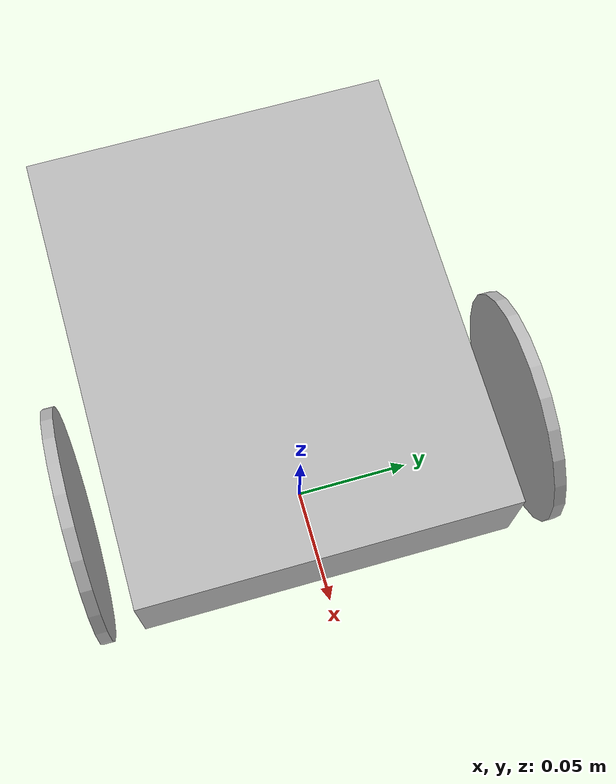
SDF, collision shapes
<?xml version="1.0"?>
<sdf version="1.6">
  <model name="puzzlebot_cam">

    <!-- ── Links ─────────────────────────────────────────────────── -->

    <link name="base_footprint">
      <pose>0 0 0 0 0 0</pose>
      <inertial>
        <mass>0.001</mass>
        <inertia><ixx>0.001</ixx><iyy>0.001</iyy><izz>0.001</izz>
                 <ixy>0</ixy><ixz>0</ixz><iyz>0</iyz></inertia>
      </inertial>
    </link>

    <!-- chassis — center at z=0.05 (wheel radius) -->
    <link name="base_link">
      <pose>0 0 0.05 0 0 0</pose>
      <inertial>
        <mass>0.8</mass>
        <pose>-0.05 0 0 0 0 0</pose>
        <inertia><ixx>0.07</ixx><iyy>0.08</iyy><izz>0.10</izz>
                 <ixy>0</ixy><ixz>0</ixz><iyz>0</iyz></inertia>
      </inertial>
      <visual name="visual">
        <geometry>
          <mesh><uri>model://puzzlebot_cam/meshes/chassis1.dae</uri></mesh>
        </geometry>
      </visual>
      <collision name="collision">
        <pose>-0.055 0 0 0 0 0</pose>
        <geometry>
          <box><size>0.20 0.16 0.046</size></box>
        </geometry>
      </collision>
    </link>

    <!-- left wheel — at (0, +0.095, 0.05) in model frame -->
    <link name="wheel_left_link">
      <pose>0 0.095 0.05 0 0 0</pose>
      <inertial>
        <mass>0.05</mass>
        <inertia><ixx>0.000051</ixx><iyy>0.000051</iyy><izz>0.000090</izz>
                 <ixy>0</ixy><ixz>0</ixz><iyz>0</iyz></inertia>
      </inertial>
      <visual name="visual">
        <geometry>
          <mesh><uri>model://puzzlebot_cam/meshes/wheel.dae</uri></mesh>
        </geometry>
      </visual>
      <collision name="collision">
        <pose>0 0 0 1.5708 0 0</pose>
        <geometry>
          <cylinder><radius>0.05</radius><length>0.005</length></cylinder>
        </geometry>
        <surface><friction><ode><mu>1.0</mu><mu2>0.2</mu2></ode></friction></surface>
      </collision>
    </link>

    <!-- right wheel — mirrored (z-rotation 180°) -->
    <link name="wheel_right_link">
      <pose>0 -0.095 0.05 0 0 3.14159</pose>
      <inertial>
        <mass>0.05</mass>
        <inertia><ixx>0.000051</ixx><iyy>0.000051</iyy><izz>0.000090</izz>
                 <ixy>0</ixy><ixz>0</ixz><iyz>0</iyz></inertia>
      </inertial>
      <visual name="visual">
        <geometry>
          <mesh><uri>model://puzzlebot_cam/meshes/wheel.dae</uri></mesh>
        </geometry>
      </visual>
      <collision name="collision">
        <pose>0 0 0 1.5708 0 0</pose>
        <geometry>
          <cylinder><radius>0.05</radius><length>0.005</length></cylinder>
        </geometry>
        <surface><friction><ode><mu>1.0</mu><mu2>0.2</mu2></ode></friction></surface>
      </collision>
    </link>

    <!-- caster ball -->
    <link name="caster_back_link">
      <pose>-0.145 0 0.006 0 0 0</pose>
      <inertial>
        <mass>0.01</mass>
        <inertia><ixx>0.000051</ixx><iyy>0.000051</iyy><izz>0.000090</izz>
                 <ixy>0</ixy><ixz>0</ixz><iyz>0</iyz></inertia>
      </inertial>
      <visual name="visual">
        <geometry><sphere><radius>0.006</radius></sphere></geometry>
        <material>
          <ambient>0.0 1 0.0 1</ambient>
          <diffuse>0.0 1 0.0 1</diffuse>
        </material>
      </visual>
      <collision name="collision">
        <geometry><sphere><radius>0.006</radius></sphere></geometry>
      </collision>
    </link>

    <!-- IMU (dummy — keeps TF tree intact with TurtleBot3 URDF) -->
    <link name="imu_link">
      <pose>0 0 0.068 0 0 0</pose>
      <inertial>
        <mass>0.001</mass>
        <inertia><ixx>0.001</ixx><iyy>0.001</iyy><izz>0.001</izz>
                 <ixy>0</ixy><ixz>0</ixz><iyz>0</iyz></inertia>
      </inertial>
    </link>

    <!-- LiDAR — 360°, 5 Hz, RPLidar A1 spec -->
    <link name="base_scan">
      <pose>0 0 0.11 0 0 0</pose>
      <inertial>
        <mass>0.01</mass>
        <inertia><ixx>0.001</ixx><iyy>0.001</iyy><izz>0.001</izz>
                 <ixy>0</ixy><ixz>0</ixz><iyz>0</iyz></inertia>
      </inertial>
      <sensor type="ray" name="base_scan_sensor">
        <visualize>false</visualize>
        <update_rate>5</update_rate>
        <ray>
          <scan>
            <horizontal>
              <samples>360</samples>
              <resolution>1</resolution>
              <min_angle>-3.14159</min_angle>
              <max_angle>3.14159</max_angle>
            </horizontal>
          </scan>
          <range>
            <min>0.120</min>
            <max>3.5</max>
            <resolution>0.015</resolution>
          </range>
          <noise>
            <type>gaussian</type>
            <mean>0.0</mean>
            <stddev>0.01</stddev>
          </noise>
        </ray>
        <plugin name="gazebo_ros_lidar" filename="libgazebo_ros_ray_sensor.so">
          <ros>
            <remapping>~/out:=scan</remapping>
          </ros>
          <output_type>sensor_msgs/LaserScan</output_type>
          <frame_name>base_scan</frame_name>
        </plugin>
      </sensor>
    </link>

    <!-- camera — FOV 1.047 rad (60°), 320×240, 30 Hz -->
    <link name="camera_link">
      <pose>0.05 0 0.11 0 0 0</pose>
      <inertial>
        <mass>0.01</mass>
        <inertia><ixx>0.001</ixx><iyy>0.001</iyy><izz>0.001</izz>
                 <ixy>0</ixy><ixz>0</ixz><iyz>0</iyz></inertia>
      </inertial>
      <sensor type="camera" name="camera_sensor">
        <camera name="head">
          <horizontal_fov>1.047</horizontal_fov>
          <image>
            <width>320</width>
            <height>240</height>
            <format>R8G8B8</format>
          </image>
          <clip><near>0.02</near><far>300</far></clip>
          <noise>
            <type>gaussian</type>
            <mean>0.0</mean>
            <stddev>0.007</stddev>
          </noise>
        </camera>
        <always_on>true</always_on>
        <update_rate>30</update_rate>
        <visualize>true</visualize>
        <plugin name="camera_driver" filename="libgazebo_ros_camera.so">
          <ros>
            <remapping>image_raw:=image_raw</remapping>
            <remapping>camera_info:=camera_info</remapping>
          </ros>
          <camera_name>camera</camera_name>
          <frame_name>camera_rgb_optical_frame</frame_name>
          <hack_baseline>0.07</hack_baseline>
        </plugin>
      </sensor>
    </link>

    <!-- camera optical frames (needed by aruco_detector) -->
    <link name="camera_rgb_frame">
      <pose>0.05 0 0.11 0 0 0</pose>
      <inertial>
        <mass>0.001</mass>
        <inertia><ixx>0.001</ixx><iyy>0.001</iyy><izz>0.001</izz>
                 <ixy>0</ixy><ixz>0</ixz><iyz>0</iyz></inertia>
      </inertial>
    </link>

    <link name="camera_rgb_optical_frame">
      <pose>0.05 0 0.11 -1.5708 0 -1.5708</pose>
      <inertial>
        <mass>0.001</mass>
        <inertia><ixx>0.001</ixx><iyy>0.001</iyy><izz>0.001</izz>
                 <ixy>0</ixy><ixz>0</ixz><iyz>0</iyz></inertia>
      </inertial>
    </link>

    <!-- ── Joints ────────────────────────────────────────────────── -->

    <joint name="base_joint" type="fixed">
      <parent>base_footprint</parent>
      <child>base_link</child>
    </joint>

    <joint name="wheel_left_joint" type="revolute">
      <parent>base_link</parent>
      <child>wheel_left_link</child>
      <axis>
        <xyz>0 1 0</xyz>
        <limit>
          <lower>-1.79769e+308</lower>
          <upper>1.79769e+308</upper>
          <effort>1</effort>
        </limit>
        <dynamics><friction>0.1</friction></dynamics>
      </axis>
    </joint>

    <joint name="wheel_right_joint" type="revolute">
      <parent>base_link</parent>
      <child>wheel_right_link</child>
      <axis>
        <xyz>0 -1 0</xyz>
        <limit>
          <lower>-1.79769e+308</lower>
          <upper>1.79769e+308</upper>
          <effort>1</effort>
        </limit>
        <dynamics><friction>0.1</friction></dynamics>
      </axis>
    </joint>

    <joint name="caster_back_joint" type="ball">
      <parent>base_link</parent>
      <child>caster_back_link</child>
    </joint>

    <joint name="imu_joint" type="fixed">
      <parent>base_link</parent>
      <child>imu_link</child>
    </joint>

    <joint name="scan_joint" type="fixed">
      <parent>base_link</parent>
      <child>base_scan</child>
    </joint>

    <joint name="camera_joint" type="fixed">
      <parent>base_link</parent>
      <child>camera_link</child>
    </joint>

    <joint name="camera_rgb_joint" type="fixed">
      <parent>camera_link</parent>
      <child>camera_rgb_frame</child>
    </joint>

    <joint name="camera_rgb_optical_joint" type="fixed">
      <parent>camera_rgb_frame</parent>
      <child>camera_rgb_optical_frame</child>
    </joint>

    <!-- ── Plugins ───────────────────────────────────────────────── -->

    <!-- differential drive — wheel_separation 0.180, wheel_diameter 0.100 -->
    <plugin name="puzzlebot_diff_drive" filename="libgazebo_ros_diff_drive.so">
      <left_joint>wheel_left_joint</left_joint>
      <right_joint>wheel_right_joint</right_joint>
      <wheel_separation>0.180</wheel_separation>
      <wheel_diameter>0.100</wheel_diameter>
      <max_wheel_torque>20</max_wheel_torque>
      <max_wheel_acceleration>1.0</max_wheel_acceleration>
      <command_topic>cmd_vel</command_topic>
      <odometry_topic>odom</odometry_topic>
      <odometry_frame>odom</odometry_frame>
      <robot_base_frame>base_footprint</robot_base_frame>
      <publish_odom>true</publish_odom>
      <publish_odom_tf>true</publish_odom_tf>
      <publish_wheel_tf>false</publish_wheel_tf>
    </plugin>

  </model>
</sdf>
